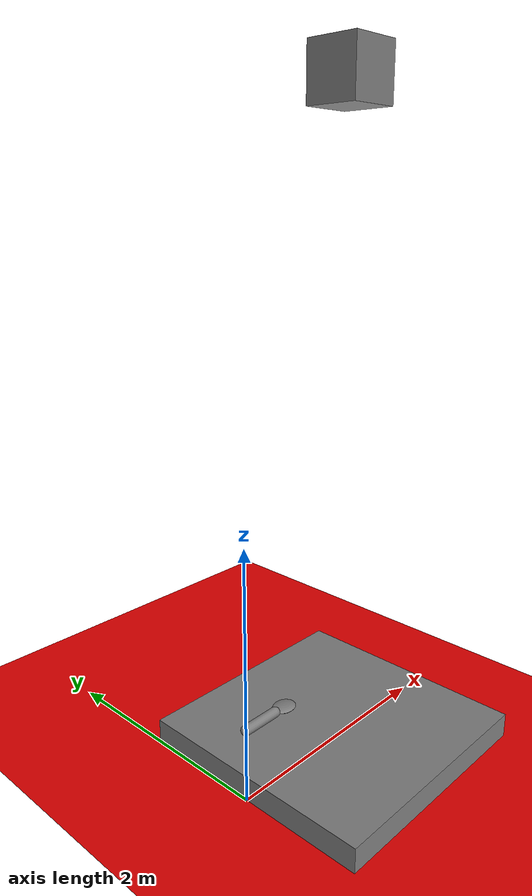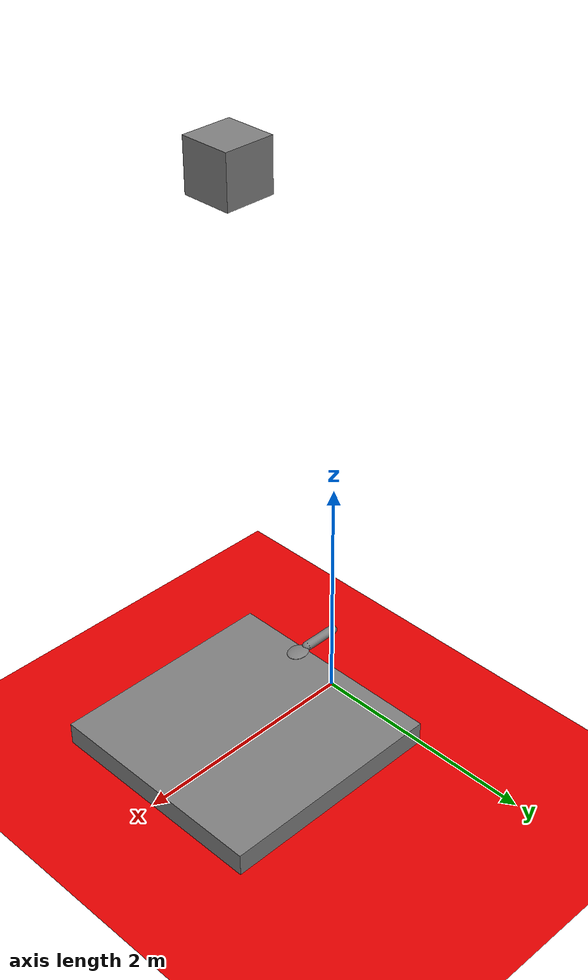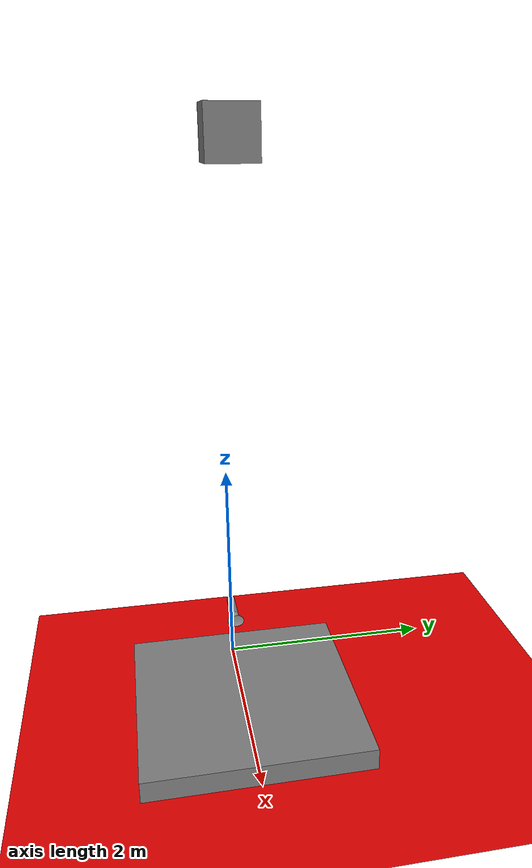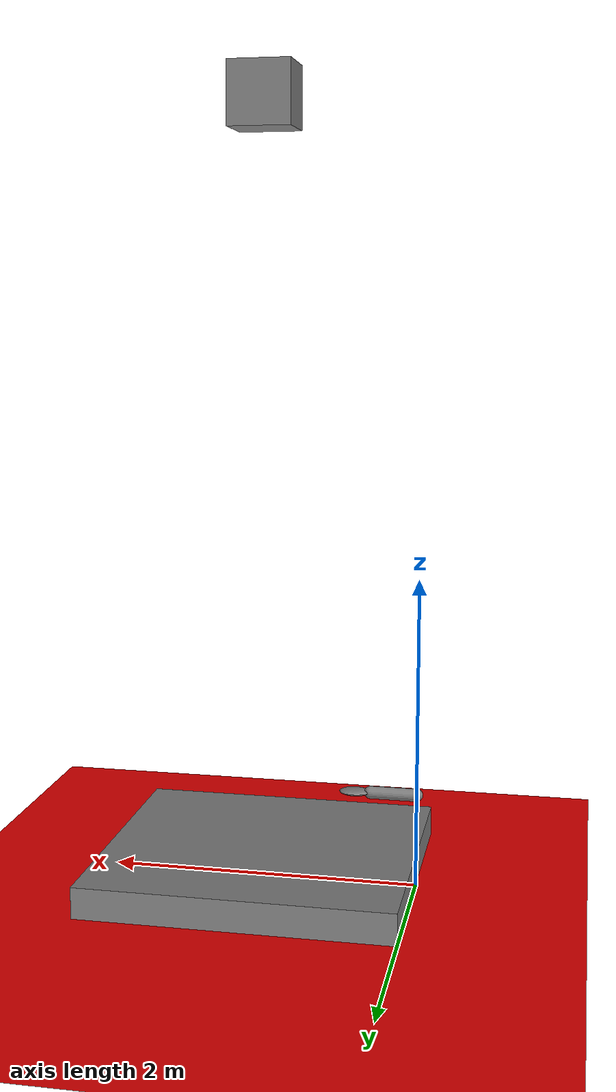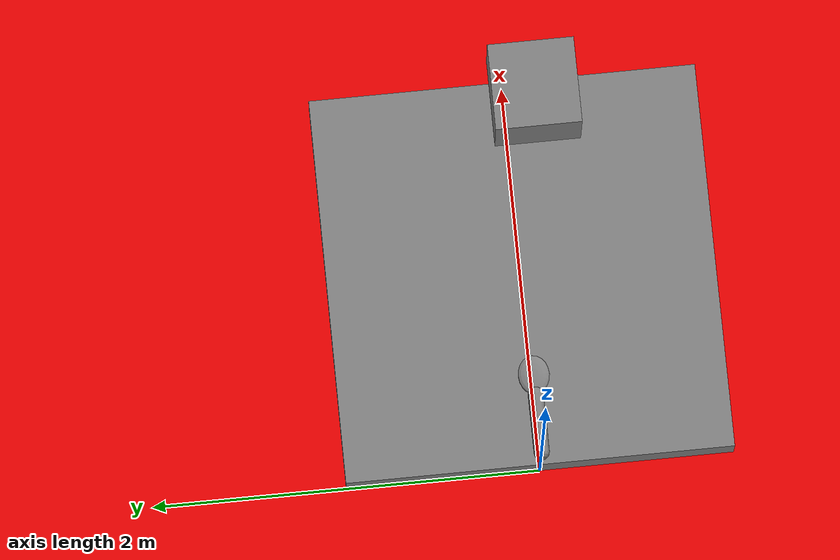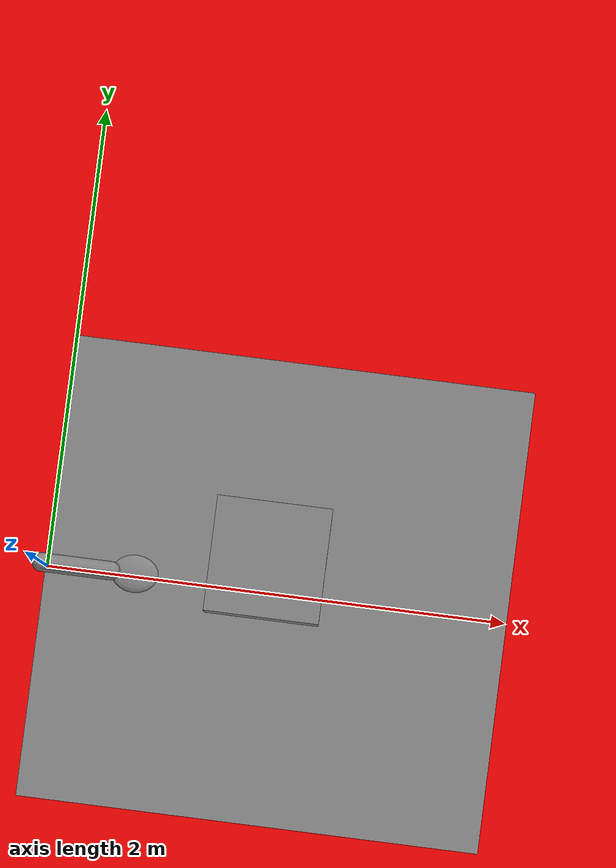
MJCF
<mujoco>
    <worldbody>
        <light diffuse=".5 .5 .5" pos="0 0 3" dir="0 0 -1"/>
        <geom type="plane" size="3 3 0.1" rgba=".9 0 0 1"/>
        <body>
            <geom type="capsule" fromto="0 0 0.6  0.3 0 0.6" size="0.04"/>
            <joint name="jnt1" type="hinge" pos="0 0 0.6" axis="0 1 0"/>
            <body>
                <geom type="ellipsoid" pos="0.4 0 0.6" size="0.1 0.08 0.02"/>
                <joint name="jnt2" type="hinge" pos="0.3 0 0.6" axis="0 1 0"/>
            </body>
        </body>
	<body pos="1 0 0.1">
	    <geom size="1 1 0.1" type="box" solref="0.02 0.1"/>
	</body>
	<body pos="1 0 5">
            <joint name="virtual_joint" type="free" limited='false' frictionloss="0" damping="0" stiffness="0" armature="0"/>
	    <geom size="0.2 0.2 0.2" type="box" solref="0.02 0.1"/>
	</body>
    </worldbody>

    <actuator>

        <motor name="act1" joint="jnt1"/>
        <position name="act2" joint="jnt2" kp="10"/>

    </actuator>

</mujoco>
